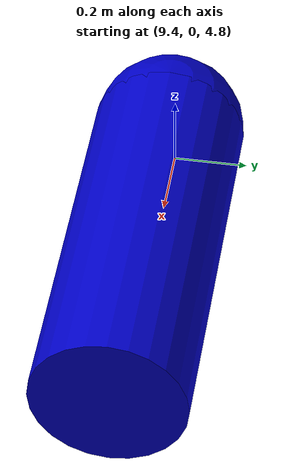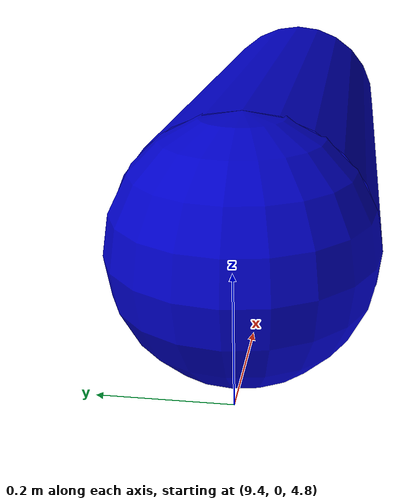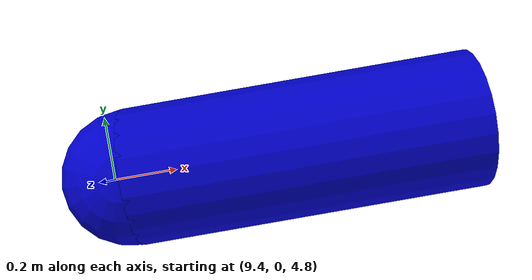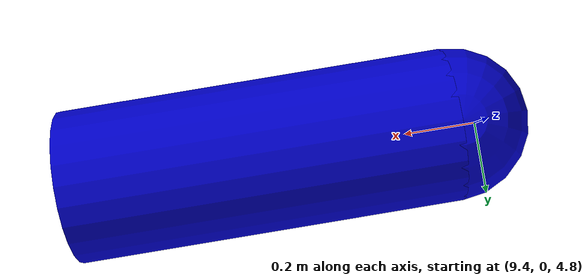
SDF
<?xml version="1.0" encoding="UTF-8"?>
<sdf version="1.9">
  <world name="default">
    <physics type="ode">
      <max_step_size>0.004</max_step_size>
      <real_time_factor>1.0</real_time_factor>
      <real_time_update_rate>250</real_time_update_rate>
    </physics>
    <plugin name="gz::sim::systems::Physics" filename="gz-sim-physics-system"/>
    <plugin name="gz::sim::systems::UserCommands" filename="gz-sim-user-commands-system"/>
    <plugin name="gz::sim::systems::SceneBroadcaster" filename="gz-sim-scene-broadcaster-system"/>
    <plugin name="gz::sim::systems::Contact" filename="gz-sim-contact-system"/>
    <plugin name="gz::sim::systems::Imu" filename="gz-sim-imu-system"/>
    <plugin name="gz::sim::systems::AirPressure" filename="gz-sim-air-pressure-system"/>
    <plugin name="gz::sim::systems::ApplyLinkWrench" filename="gz-sim-apply-link-wrench-system"/>
    <plugin name="gz::sim::systems::NavSat" filename="gz-sim-navsat-system"/>
    <plugin name="gz::sim::systems::Sensors" filename="gz-sim-sensors-system">
      <render_engine>ogre2</render_engine>
    </plugin>
    <gui fullscreen="false">
      <!-- 3D scene -->
      <plugin filename="MinimalScene" name="3D View">
        <gz-gui>
          <title>3D View</title>
          <property type="bool" key="showTitleBar">false</property>
          <property type="string" key="state">docked</property>
        </gz-gui>
        <engine>ogre2</engine>
        <scene>scene</scene>
        <ambient_light>0.4 0.4 0.4</ambient_light>
        <background_color>0.8 0.8 0.8</background_color>
        <camera_pose>-6 0 6 0 0.5 0</camera_pose>
        <camera_clip>
          <near>0.25</near>
          <far>25000</far>
        </camera_clip>
      </plugin>
      <!-- Plugins that add functionality to the scene -->
      <plugin filename="EntityContextMenuPlugin" name="Entity context menu">
        <gz-gui>
          <property key="state" type="string">floating</property>
          <property key="width" type="double">5</property>
          <property key="height" type="double">5</property>
          <property key="showTitleBar" type="bool">false</property>
        </gz-gui>
      </plugin>
      <plugin filename="GzSceneManager" name="Scene Manager">
        <gz-gui>
          <property key="resizable" type="bool">false</property>
          <property key="width" type="double">5</property>
          <property key="height" type="double">5</property>
          <property key="state" type="string">floating</property>
          <property key="showTitleBar" type="bool">false</property>
        </gz-gui>
      </plugin>
      <plugin filename="InteractiveViewControl" name="Interactive view control">
        <gz-gui>
          <property key="resizable" type="bool">false</property>
          <property key="width" type="double">5</property>
          <property key="height" type="double">5</property>
          <property key="state" type="string">floating</property>
          <property key="showTitleBar" type="bool">false</property>
        </gz-gui>
      </plugin>
      <plugin filename="CameraTracking" name="Camera Tracking">
        <gz-gui>
          <property key="resizable" type="bool">false</property>
          <property key="width" type="double">5</property>
          <property key="height" type="double">5</property>
          <property key="state" type="string">floating</property>
          <property key="showTitleBar" type="bool">false</property>
        </gz-gui>
      </plugin>
      <plugin filename="MarkerManager" name="Marker manager">
        <gz-gui>
          <property key="resizable" type="bool">false</property>
          <property key="width" type="double">5</property>
          <property key="height" type="double">5</property>
          <property key="state" type="string">floating</property>
          <property key="showTitleBar" type="bool">false</property>
        </gz-gui>
      </plugin>
      <plugin filename="SelectEntities" name="Select Entities">
        <gz-gui>
          <anchors target="Select entities">
            <line own="right" target="right"/>
            <line own="top" target="top"/>
          </anchors>
          <property key="resizable" type="bool">false</property>
          <property key="width" type="double">5</property>
          <property key="height" type="double">5</property>
          <property key="state" type="string">floating</property>
          <property key="showTitleBar" type="bool">false</property>
        </gz-gui>
      </plugin>
      <plugin filename="VisualizationCapabilities" name="Visualization Capabilities">
        <gz-gui>
          <property key="resizable" type="bool">false</property>
          <property key="width" type="double">5</property>
          <property key="height" type="double">5</property>
          <property key="state" type="string">floating</property>
          <property key="showTitleBar" type="bool">false</property>
        </gz-gui>
      </plugin>
      <plugin filename="Spawn" name="Spawn Entities">
        <gz-gui>
          <anchors target="Select entities">
            <line own="right" target="right"/>
            <line own="top" target="top"/>
          </anchors>
          <property key="resizable" type="bool">false</property>
          <property key="width" type="double">5</property>
          <property key="height" type="double">5</property>
          <property key="state" type="string">floating</property>
          <property key="showTitleBar" type="bool">false</property>
        </gz-gui>
      </plugin>
      <plugin name="World control" filename="WorldControl">
        <gz-gui>
          <title>World control</title>
          <property type="bool" key="showTitleBar">0</property>
          <property type="bool" key="resizable">0</property>
          <property type="double" key="height">72</property>
          <property type="double" key="width">121</property>
          <property type="double" key="z">1</property>
          <property type="string" key="state">floating</property>
          <anchors target="3D View">
            <line own="left" target="left"/>
            <line own="bottom" target="bottom"/>
          </anchors>
        </gz-gui>
        <play_pause>1</play_pause>
        <step>1</step>
        <start_paused>1</start_paused>
      </plugin>
      <plugin name="World stats" filename="WorldStats">
        <gz-gui>
          <title>World stats</title>
          <property type="bool" key="showTitleBar">0</property>
          <property type="bool" key="resizable">0</property>
          <property type="double" key="height">110</property>
          <property type="double" key="width">290</property>
          <property type="double" key="z">1</property>
          <property type="string" key="state">floating</property>
          <anchors target="3D View">
            <line own="right" target="right"/>
            <line own="bottom" target="bottom"/>
          </anchors>
        </gz-gui>
        <sim_time>1</sim_time>
        <real_time>1</real_time>
        <real_time_factor>1</real_time_factor>
        <iterations>1</iterations>
      </plugin>
      <plugin name="Entity tree" filename="EntityTree"/>
    </gui>
    <gravity>0 0 -9.8</gravity>
    <magnetic_field>6e-06 2.3e-05 -4.2e-05</magnetic_field>
    <atmosphere type="adiabatic"/>
    <scene>
      <grid>false</grid>
      <ambient>0.4 0.4 0.4 1</ambient>
      <background>0.7 0.7 0.7 1</background>
      <shadows>true</shadows>
    </scene>
    <model name="ground_plane">
      <static>true</static>
      <link name="link">
        <collision name="collision">
          <geometry>
            <plane>
              <normal>0 0 1</normal>
              <size>1 1</size>
            </plane>
          </geometry>
          <surface>
            <friction>
              <ode/>
            </friction>
            <bounce/>
            <contact/>
          </surface>
        </collision>
        <visual name="visual">
          <geometry>
            <plane>
              <normal>0 0 1</normal>
              <size>100 100</size>
            </plane>
          </geometry>
          <material>
            <ambient>0.8 0.8 0.8 1</ambient>
            <diffuse>0.8 0.8 0.8 1</diffuse>
            <specular>0.8 0.8 0.8 1</specular>
          </material>
        </visual>
        <pose>0 0 0 0 -0 0</pose>
        <inertial>
          <pose>0 0 0 0 -0 0</pose>
          <mass>1</mass>
          <inertia>
            <ixx>1</ixx>
            <ixy>0</ixy>
            <ixz>0</ixz>
            <iyy>1</iyy>
            <iyz>0</iyz>
            <izz>1</izz>
          </inertia>
        </inertial>
        <enable_wind>false</enable_wind>
      </link>
      <pose>0 0 0 0 -0 0</pose>
      <self_collide>false</self_collide>
    </model>
    <light name="sunUTC" type="directional">
      <pose>0 0 500 0 -0 0</pose>
      <cast_shadows>true</cast_shadows>
      <intensity>1</intensity>
      <direction>0.001 0.625 -0.78</direction>
      <diffuse>0.904 0.904 0.904 1</diffuse>
      <specular>0.271 0.271 0.271 1</specular>
      <attenuation>
        <range>2000</range>
        <linear>0</linear>
        <constant>1</constant>
        <quadratic>0</quadratic>
      </attenuation>
      <spot>
        <inner_angle>0</inner_angle>
        <outer_angle>0</outer_angle>
        <falloff>0</falloff>
      </spot>
    </light>
    <spherical_coordinates>
      <surface_model>EARTH_WGS84</surface_model>
      <world_frame_orientation>ENU</world_frame_orientation>
      <latitude_deg>47.397971057728974</latitude_deg>
      <longitude_deg> 8.546163739800146</longitude_deg>
      <elevation>0</elevation>
    </spherical_coordinates>

    <model name="misil">
      <plugin name="gz_misil_plugin" filename="libgz_misil_plugin.so"></plugin>
      <real_time_update_rate>250</real_time_update_rate>
      <pose>10 0 5 0 0 3.1415</pose>
      <!-- Base link -->
      <link name="base_link">
        <pose>0 0 0 0 0 0</pose>
        <inertial>
          <mass>10.5</mass>
          <inertia>
            <ixx>0.21</ixx>
            <ixy>0.0</ixy>
            <ixz>0.0</ixz>
            <iyy>0.98</iyy>
            <iyz>0.0</iyz>
            <izz>0.98</izz>
          </inertia>
        </inertial>
        <collision name="collision">
          <pose>0 0 0 0 1.5708 0</pose>
          <geometry>
            <cylinder>
              <radius>0.2</radius>
              <length>1.0</length>
            </cylinder>
          </geometry>
        </collision>
        <visual name="visual">
          <pose>0 0 0 0 1.5708 0</pose>
          <geometry>
            <cylinder>
              <radius>0.2</radius>
              <length>1.0</length>
            </cylinder>
          </geometry>
          <material>
            <ambient>0 0 0.8 1</ambient>
            <diffuse>0 0 0.8 1</diffuse>
          </material>
        </visual>
      </link>

      <!-- Head link -->
      <link name="head">
        <pose>0.5 0 0 0 0 0</pose><!-- body_length/2 = 1.0/2 = 0.5 -->
        <inertial>
          <mass>2.5</mass>
          <inertia>
            <ixx>0.04</ixx>
            <ixy>0.0</ixy>
            <ixz>0.0</ixz>
            <iyy>0.04</iyy>
            <iyz>0.0</iyz>
            <izz>0.04</izz>
          </inertia>
        </inertial>
        <collision name="collision">
          <geometry>
            <sphere>
              <radius>0.2</radius>
            </sphere>
          </geometry>
        </collision>
        <visual name="visual">
          <geometry>
            <sphere>
              <radius>0.2</radius>
            </sphere>
          </geometry>
          <material>
            <ambient>0 0 0.8 1</ambient>
            <diffuse>0 0 0.8 1</diffuse>
          </material>
        </visual>
      </link>

      <!-- Fixed joint: base_link to head -->
      <joint name="head_joint" type="fixed">
        <parent>base_link</parent>
        <child>head</child>
        <pose>0.5 0 0 0 0 0</pose>
      </joint>
    </model>
  </world>
</sdf>
